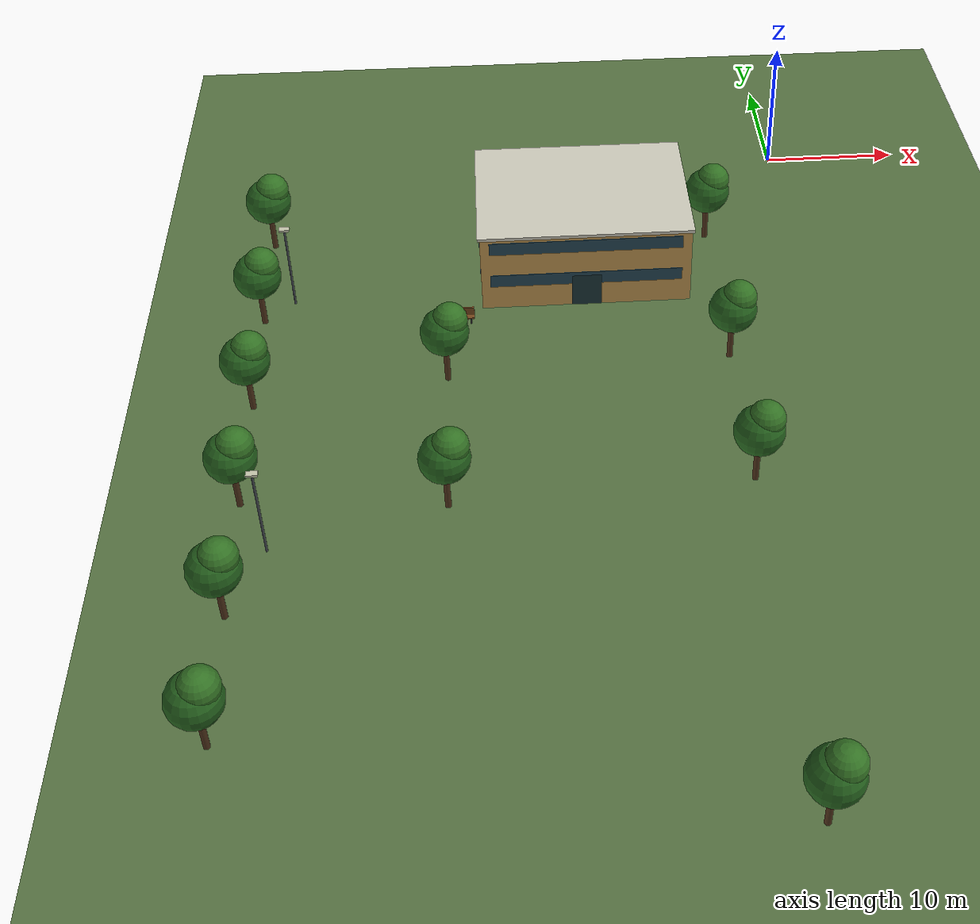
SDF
<sdf version="1.8">
 <world name="ute_city_v1">
  <model name="ground">
   <static>true</static>
   <link name="link">
    <visual name="ground">
     <pose>0 0 -0.1 0 0 0</pose>
     <geometry><box><size>106 154 0.2</size></box></geometry>
     <material>
      <ambient>0.35 0.46 0.27 1</ambient>
      <diffuse>0.35 0.46 0.27 1</diffuse>
      <specular>0.05 0.05 0.05 1</specular>
     </material>
    </visual>
    <collision name="ground_collision">
     <pose>0 0 -0.1 0 0 0</pose>
     <geometry><box><size>106 154 0.2</size></box></geometry>
    </collision>
   </link>
  </model>
  <model name="student_services">
   <static>true</static>
   <pose>-16 -12 0 0 0 0</pose>
   <link name="link">
    <visual name="block">
     <pose>0 0 3 0 0 0</pose>
     <geometry><box><size>15 11 6</size></box></geometry>
     <material>
      <ambient>0.80 0.63 0.34 1</ambient>
      <diffuse>0.80 0.63 0.34 1</diffuse>
      <specular>0.05 0.05 0.05 1</specular>
     </material>
    </visual>
    <collision name="block_collision">
     <pose>0 0 3 0 0 0</pose>
     <geometry><box><size>15 11 6</size></box></geometry>
    </collision>
    <visual name="roof">
     <pose>0 0 6.12 0 0 0</pose>
     <geometry><box><size>15.3 11.3 0.24</size></box></geometry>
     <material>
      <ambient>0.83 0.82 0.76 1</ambient>
      <diffuse>0.83 0.82 0.76 1</diffuse>
      <specular>0.05 0.05 0.05 1</specular>
     </material>
    </visual>
    <collision name="roof_collision">
     <pose>0 0 6.12 0 0 0</pose>
     <geometry><box><size>15.3 11.3 0.24</size></box></geometry>
    </collision>
    <visual name="windows_y_1_-1">
     <pose>0 -5.518 2.4 0 0 0</pose>
     <geometry><box><size>13.7 0.03 1</size></box></geometry>
     <material>
      <ambient>0.16 0.30 0.36 1</ambient>
      <diffuse>0.16 0.30 0.36 1</diffuse>
      <specular>0.05 0.05 0.05 1</specular>
     </material>
    </visual>
    <visual name="windows_x_1_-1">
     <pose>-7.518 0 2.4 0 0 0</pose>
     <geometry><box><size>0.03 9.7 1</size></box></geometry>
     <material>
      <ambient>0.16 0.30 0.36 1</ambient>
      <diffuse>0.16 0.30 0.36 1</diffuse>
      <specular>0.05 0.05 0.05 1</specular>
     </material>
    </visual>
    <visual name="windows_y_1_1">
     <pose>0 5.518 2.4 0 0 0</pose>
     <geometry><box><size>13.7 0.03 1</size></box></geometry>
     <material>
      <ambient>0.16 0.30 0.36 1</ambient>
      <diffuse>0.16 0.30 0.36 1</diffuse>
      <specular>0.05 0.05 0.05 1</specular>
     </material>
    </visual>
    <visual name="windows_x_1_1">
     <pose>7.518 0 2.4 0 0 0</pose>
     <geometry><box><size>0.03 9.7 1</size></box></geometry>
     <material>
      <ambient>0.16 0.30 0.36 1</ambient>
      <diffuse>0.16 0.30 0.36 1</diffuse>
      <specular>0.05 0.05 0.05 1</specular>
     </material>
    </visual>
    <visual name="windows_y_2_-1">
     <pose>0 -5.518 5.2 0 0 0</pose>
     <geometry><box><size>13.7 0.03 1</size></box></geometry>
     <material>
      <ambient>0.16 0.30 0.36 1</ambient>
      <diffuse>0.16 0.30 0.36 1</diffuse>
      <specular>0.05 0.05 0.05 1</specular>
     </material>
    </visual>
    <visual name="windows_x_2_-1">
     <pose>-7.518 0 5.2 0 0 0</pose>
     <geometry><box><size>0.03 9.7 1</size></box></geometry>
     <material>
      <ambient>0.16 0.30 0.36 1</ambient>
      <diffuse>0.16 0.30 0.36 1</diffuse>
      <specular>0.05 0.05 0.05 1</specular>
     </material>
    </visual>
    <visual name="windows_y_2_1">
     <pose>0 5.518 5.2 0 0 0</pose>
     <geometry><box><size>13.7 0.03 1</size></box></geometry>
     <material>
      <ambient>0.16 0.30 0.36 1</ambient>
      <diffuse>0.16 0.30 0.36 1</diffuse>
      <specular>0.05 0.05 0.05 1</specular>
     </material>
    </visual>
    <visual name="windows_x_2_1">
     <pose>7.518 0 5.2 0 0 0</pose>
     <geometry><box><size>0.03 9.7 1</size></box></geometry>
     <material>
      <ambient>0.16 0.30 0.36 1</ambient>
      <diffuse>0.16 0.30 0.36 1</diffuse>
      <specular>0.05 0.05 0.05 1</specular>
     </material>
    </visual>
    <visual name="entry">
     <pose>0 -5.518 1.3 0 0 0</pose>
     <geometry><box><size>2.1 0.04 2.6</size></box></geometry>
     <material>
      <ambient>0.12 0.22 0.24 1</ambient>
      <diffuse>0.12 0.22 0.24 1</diffuse>
      <specular>0.05 0.05 0.05 1</specular>
     </material>
    </visual>
   </link>
  </model>
  <model name="tree_000">
   <static>true</static>
   <pose>-39 -54 0 0 0 0</pose>
   <link name="link">
    <visual name="trunk">
     <pose>0 0 1.6 0 0 0</pose>
     <geometry><cylinder><radius>0.2</radius><length>3.2</length></cylinder></geometry>
     <material>
      <ambient>0.30 0.19 0.10 1</ambient>
      <diffuse>0.30 0.19 0.10 1</diffuse>
      <specular>0.05 0.05 0.05 1</specular>
     </material>
    </visual>
    <collision name="trunk_collision">
     <pose>0 0 1.6 0 0 0</pose>
     <geometry><cylinder><radius>0.2</radius><length>3.2</length></cylinder></geometry>
    </collision>
    <visual name="canopy">
     <pose>0 0 4.2 0 0 0</pose>
     <geometry><sphere><radius>1.65</radius></sphere></geometry>
     <material>
      <ambient>0.15 0.39 0.12 1</ambient>
      <diffuse>0.15 0.39 0.12 1</diffuse>
      <specular>0.05 0.05 0.05 1</specular>
     </material>
    </visual>
    <visual name="crown">
     <pose>0.4 0 5.2 0 0 0</pose>
     <geometry><sphere><radius>1.2</radius></sphere></geometry>
     <material>
      <ambient>0.21 0.46 0.15 1</ambient>
      <diffuse>0.21 0.46 0.15 1</diffuse>
      <specular>0.05 0.05 0.05 1</specular>
     </material>
    </visual>
   </link>
  </model>
  <model name="tree_001">
   <static>true</static>
   <pose>-39 -45 0 0 0 0</pose>
   <link name="link">
    <visual name="trunk">
     <pose>0 0 1.6 0 0 0</pose>
     <geometry><cylinder><radius>0.2</radius><length>3.2</length></cylinder></geometry>
     <material>
      <ambient>0.30 0.19 0.10 1</ambient>
      <diffuse>0.30 0.19 0.10 1</diffuse>
      <specular>0.05 0.05 0.05 1</specular>
     </material>
    </visual>
    <collision name="trunk_collision">
     <pose>0 0 1.6 0 0 0</pose>
     <geometry><cylinder><radius>0.2</radius><length>3.2</length></cylinder></geometry>
    </collision>
    <visual name="canopy">
     <pose>0 0 4.2 0 0 0</pose>
     <geometry><sphere><radius>1.65</radius></sphere></geometry>
     <material>
      <ambient>0.15 0.39 0.12 1</ambient>
      <diffuse>0.15 0.39 0.12 1</diffuse>
      <specular>0.05 0.05 0.05 1</specular>
     </material>
    </visual>
    <visual name="crown">
     <pose>0.4 0 5.2 0 0 0</pose>
     <geometry><sphere><radius>1.2</radius></sphere></geometry>
     <material>
      <ambient>0.21 0.46 0.15 1</ambient>
      <diffuse>0.21 0.46 0.15 1</diffuse>
      <specular>0.05 0.05 0.05 1</specular>
     </material>
    </visual>
   </link>
  </model>
  <model name="tree_002">
   <static>true</static>
   <pose>-39 -36 0 0 0 0</pose>
   <link name="link">
    <visual name="trunk">
     <pose>0 0 1.6 0 0 0</pose>
     <geometry><cylinder><radius>0.2</radius><length>3.2</length></cylinder></geometry>
     <material>
      <ambient>0.30 0.19 0.10 1</ambient>
      <diffuse>0.30 0.19 0.10 1</diffuse>
      <specular>0.05 0.05 0.05 1</specular>
     </material>
    </visual>
    <collision name="trunk_collision">
     <pose>0 0 1.6 0 0 0</pose>
     <geometry><cylinder><radius>0.2</radius><length>3.2</length></cylinder></geometry>
    </collision>
    <visual name="canopy">
     <pose>0 0 4.2 0 0 0</pose>
     <geometry><sphere><radius>1.65</radius></sphere></geometry>
     <material>
      <ambient>0.15 0.39 0.12 1</ambient>
      <diffuse>0.15 0.39 0.12 1</diffuse>
      <specular>0.05 0.05 0.05 1</specular>
     </material>
    </visual>
    <visual name="crown">
     <pose>0.4 0 5.2 0 0 0</pose>
     <geometry><sphere><radius>1.2</radius></sphere></geometry>
     <material>
      <ambient>0.21 0.46 0.15 1</ambient>
      <diffuse>0.21 0.46 0.15 1</diffuse>
      <specular>0.05 0.05 0.05 1</specular>
     </material>
    </visual>
   </link>
  </model>
  <model name="tree_003">
   <static>true</static>
   <pose>-39 -27 0 0 0 0</pose>
   <link name="link">
    <visual name="trunk">
     <pose>0 0 1.6 0 0 0</pose>
     <geometry><cylinder><radius>0.2</radius><length>3.2</length></cylinder></geometry>
     <material>
      <ambient>0.30 0.19 0.10 1</ambient>
      <diffuse>0.30 0.19 0.10 1</diffuse>
      <specular>0.05 0.05 0.05 1</specular>
     </material>
    </visual>
    <collision name="trunk_collision">
     <pose>0 0 1.6 0 0 0</pose>
     <geometry><cylinder><radius>0.2</radius><length>3.2</length></cylinder></geometry>
    </collision>
    <visual name="canopy">
     <pose>0 0 4.2 0 0 0</pose>
     <geometry><sphere><radius>1.65</radius></sphere></geometry>
     <material>
      <ambient>0.15 0.39 0.12 1</ambient>
      <diffuse>0.15 0.39 0.12 1</diffuse>
      <specular>0.05 0.05 0.05 1</specular>
     </material>
    </visual>
    <visual name="crown">
     <pose>0.4 0 5.2 0 0 0</pose>
     <geometry><sphere><radius>1.2</radius></sphere></geometry>
     <material>
      <ambient>0.21 0.46 0.15 1</ambient>
      <diffuse>0.21 0.46 0.15 1</diffuse>
      <specular>0.05 0.05 0.05 1</specular>
     </material>
    </visual>
   </link>
  </model>
  <model name="tree_004">
   <static>true</static>
   <pose>-39 -18 0 0 0 0</pose>
   <link name="link">
    <visual name="trunk">
     <pose>0 0 1.6 0 0 0</pose>
     <geometry><cylinder><radius>0.2</radius><length>3.2</length></cylinder></geometry>
     <material>
      <ambient>0.30 0.19 0.10 1</ambient>
      <diffuse>0.30 0.19 0.10 1</diffuse>
      <specular>0.05 0.05 0.05 1</specular>
     </material>
    </visual>
    <collision name="trunk_collision">
     <pose>0 0 1.6 0 0 0</pose>
     <geometry><cylinder><radius>0.2</radius><length>3.2</length></cylinder></geometry>
    </collision>
    <visual name="canopy">
     <pose>0 0 4.2 0 0 0</pose>
     <geometry><sphere><radius>1.65</radius></sphere></geometry>
     <material>
      <ambient>0.15 0.39 0.12 1</ambient>
      <diffuse>0.15 0.39 0.12 1</diffuse>
      <specular>0.05 0.05 0.05 1</specular>
     </material>
    </visual>
    <visual name="crown">
     <pose>0.4 0 5.2 0 0 0</pose>
     <geometry><sphere><radius>1.2</radius></sphere></geometry>
     <material>
      <ambient>0.21 0.46 0.15 1</ambient>
      <diffuse>0.21 0.46 0.15 1</diffuse>
      <specular>0.05 0.05 0.05 1</specular>
     </material>
    </visual>
   </link>
  </model>
  <model name="tree_005">
   <static>true</static>
   <pose>-39 -9 0 0 0 0</pose>
   <link name="link">
    <visual name="trunk">
     <pose>0 0 1.6 0 0 0</pose>
     <geometry><cylinder><radius>0.2</radius><length>3.2</length></cylinder></geometry>
     <material>
      <ambient>0.30 0.19 0.10 1</ambient>
      <diffuse>0.30 0.19 0.10 1</diffuse>
      <specular>0.05 0.05 0.05 1</specular>
     </material>
    </visual>
    <collision name="trunk_collision">
     <pose>0 0 1.6 0 0 0</pose>
     <geometry><cylinder><radius>0.2</radius><length>3.2</length></cylinder></geometry>
    </collision>
    <visual name="canopy">
     <pose>0 0 4.2 0 0 0</pose>
     <geometry><sphere><radius>1.65</radius></sphere></geometry>
     <material>
      <ambient>0.15 0.39 0.12 1</ambient>
      <diffuse>0.15 0.39 0.12 1</diffuse>
      <specular>0.05 0.05 0.05 1</specular>
     </material>
    </visual>
    <visual name="crown">
     <pose>0.4 0 5.2 0 0 0</pose>
     <geometry><sphere><radius>1.2</radius></sphere></geometry>
     <material>
      <ambient>0.21 0.46 0.15 1</ambient>
      <diffuse>0.21 0.46 0.15 1</diffuse>
      <specular>0.05 0.05 0.05 1</specular>
     </material>
    </visual>
   </link>
  </model>
  <model name="tree_033">
   <static>true</static>
   <pose>-6.5 -61 0 0 0 0</pose>
   <link name="link">
    <visual name="trunk">
     <pose>0 0 1.6 0 0 0</pose>
     <geometry><cylinder><radius>0.2</radius><length>3.2</length></cylinder></geometry>
     <material>
      <ambient>0.30 0.19 0.10 1</ambient>
      <diffuse>0.30 0.19 0.10 1</diffuse>
      <specular>0.05 0.05 0.05 1</specular>
     </material>
    </visual>
    <collision name="trunk_collision">
     <pose>0 0 1.6 0 0 0</pose>
     <geometry><cylinder><radius>0.2</radius><length>3.2</length></cylinder></geometry>
    </collision>
    <visual name="canopy">
     <pose>0 0 4.2 0 0 0</pose>
     <geometry><sphere><radius>1.65</radius></sphere></geometry>
     <material>
      <ambient>0.15 0.39 0.12 1</ambient>
      <diffuse>0.15 0.39 0.12 1</diffuse>
      <specular>0.05 0.05 0.05 1</specular>
     </material>
    </visual>
    <visual name="crown">
     <pose>0.4 0 5.2 0 0 0</pose>
     <geometry><sphere><radius>1.2</radius></sphere></geometry>
     <material>
      <ambient>0.21 0.46 0.15 1</ambient>
      <diffuse>0.21 0.46 0.15 1</diffuse>
      <specular>0.05 0.05 0.05 1</specular>
     </material>
    </visual>
   </link>
  </model>
  <model name="tree_034">
   <static>true</static>
   <pose>-6.5 -36 0 0 0 0</pose>
   <link name="link">
    <visual name="trunk">
     <pose>0 0 1.6 0 0 0</pose>
     <geometry><cylinder><radius>0.2</radius><length>3.2</length></cylinder></geometry>
     <material>
      <ambient>0.30 0.19 0.10 1</ambient>
      <diffuse>0.30 0.19 0.10 1</diffuse>
      <specular>0.05 0.05 0.05 1</specular>
     </material>
    </visual>
    <collision name="trunk_collision">
     <pose>0 0 1.6 0 0 0</pose>
     <geometry><cylinder><radius>0.2</radius><length>3.2</length></cylinder></geometry>
    </collision>
    <visual name="canopy">
     <pose>0 0 4.2 0 0 0</pose>
     <geometry><sphere><radius>1.65</radius></sphere></geometry>
     <material>
      <ambient>0.15 0.39 0.12 1</ambient>
      <diffuse>0.15 0.39 0.12 1</diffuse>
      <specular>0.05 0.05 0.05 1</specular>
     </material>
    </visual>
    <visual name="crown">
     <pose>0.4 0 5.2 0 0 0</pose>
     <geometry><sphere><radius>1.2</radius></sphere></geometry>
     <material>
      <ambient>0.21 0.46 0.15 1</ambient>
      <diffuse>0.21 0.46 0.15 1</diffuse>
      <specular>0.05 0.05 0.05 1</specular>
     </material>
    </visual>
   </link>
  </model>
  <model name="tree_035">
   <static>true</static>
   <pose>-6.5 -24 0 0 0 0</pose>
   <link name="link">
    <visual name="trunk">
     <pose>0 0 1.6 0 0 0</pose>
     <geometry><cylinder><radius>0.2</radius><length>3.2</length></cylinder></geometry>
     <material>
      <ambient>0.30 0.19 0.10 1</ambient>
      <diffuse>0.30 0.19 0.10 1</diffuse>
      <specular>0.05 0.05 0.05 1</specular>
     </material>
    </visual>
    <collision name="trunk_collision">
     <pose>0 0 1.6 0 0 0</pose>
     <geometry><cylinder><radius>0.2</radius><length>3.2</length></cylinder></geometry>
    </collision>
    <visual name="canopy">
     <pose>0 0 4.2 0 0 0</pose>
     <geometry><sphere><radius>1.65</radius></sphere></geometry>
     <material>
      <ambient>0.15 0.39 0.12 1</ambient>
      <diffuse>0.15 0.39 0.12 1</diffuse>
      <specular>0.05 0.05 0.05 1</specular>
     </material>
    </visual>
    <visual name="crown">
     <pose>0.4 0 5.2 0 0 0</pose>
     <geometry><sphere><radius>1.2</radius></sphere></geometry>
     <material>
      <ambient>0.21 0.46 0.15 1</ambient>
      <diffuse>0.21 0.46 0.15 1</diffuse>
      <specular>0.05 0.05 0.05 1</specular>
     </material>
    </visual>
   </link>
  </model>
  <model name="tree_036">
   <static>true</static>
   <pose>-6.5 -10 0 0 0 0</pose>
   <link name="link">
    <visual name="trunk">
     <pose>0 0 1.6 0 0 0</pose>
     <geometry><cylinder><radius>0.2</radius><length>3.2</length></cylinder></geometry>
     <material>
      <ambient>0.30 0.19 0.10 1</ambient>
      <diffuse>0.30 0.19 0.10 1</diffuse>
      <specular>0.05 0.05 0.05 1</specular>
     </material>
    </visual>
    <collision name="trunk_collision">
     <pose>0 0 1.6 0 0 0</pose>
     <geometry><cylinder><radius>0.2</radius><length>3.2</length></cylinder></geometry>
    </collision>
    <visual name="canopy">
     <pose>0 0 4.2 0 0 0</pose>
     <geometry><sphere><radius>1.65</radius></sphere></geometry>
     <material>
      <ambient>0.15 0.39 0.12 1</ambient>
      <diffuse>0.15 0.39 0.12 1</diffuse>
      <specular>0.05 0.05 0.05 1</specular>
     </material>
    </visual>
    <visual name="crown">
     <pose>0.4 0 5.2 0 0 0</pose>
     <geometry><sphere><radius>1.2</radius></sphere></geometry>
     <material>
      <ambient>0.21 0.46 0.15 1</ambient>
      <diffuse>0.21 0.46 0.15 1</diffuse>
      <specular>0.05 0.05 0.05 1</specular>
     </material>
    </visual>
   </link>
  </model>
  <model name="tree_047">
   <static>true</static>
   <pose>-26 -37 0 0 0 0</pose>
   <link name="link">
    <visual name="trunk">
     <pose>0 0 1.6 0 0 0</pose>
     <geometry><cylinder><radius>0.2</radius><length>3.2</length></cylinder></geometry>
     <material>
      <ambient>0.30 0.19 0.10 1</ambient>
      <diffuse>0.30 0.19 0.10 1</diffuse>
      <specular>0.05 0.05 0.05 1</specular>
     </material>
    </visual>
    <collision name="trunk_collision">
     <pose>0 0 1.6 0 0 0</pose>
     <geometry><cylinder><radius>0.2</radius><length>3.2</length></cylinder></geometry>
    </collision>
    <visual name="canopy">
     <pose>0 0 4.2 0 0 0</pose>
     <geometry><sphere><radius>1.65</radius></sphere></geometry>
     <material>
      <ambient>0.15 0.39 0.12 1</ambient>
      <diffuse>0.15 0.39 0.12 1</diffuse>
      <specular>0.05 0.05 0.05 1</specular>
     </material>
    </visual>
    <visual name="crown">
     <pose>0.4 0 5.2 0 0 0</pose>
     <geometry><sphere><radius>1.2</radius></sphere></geometry>
     <material>
      <ambient>0.21 0.46 0.15 1</ambient>
      <diffuse>0.21 0.46 0.15 1</diffuse>
      <specular>0.05 0.05 0.05 1</specular>
     </material>
    </visual>
   </link>
  </model>
  <model name="tree_048">
   <static>true</static>
   <pose>-26 -25 0 0 0 0</pose>
   <link name="link">
    <visual name="trunk">
     <pose>0 0 1.6 0 0 0</pose>
     <geometry><cylinder><radius>0.2</radius><length>3.2</length></cylinder></geometry>
     <material>
      <ambient>0.30 0.19 0.10 1</ambient>
      <diffuse>0.30 0.19 0.10 1</diffuse>
      <specular>0.05 0.05 0.05 1</specular>
     </material>
    </visual>
    <collision name="trunk_collision">
     <pose>0 0 1.6 0 0 0</pose>
     <geometry><cylinder><radius>0.2</radius><length>3.2</length></cylinder></geometry>
    </collision>
    <visual name="canopy">
     <pose>0 0 4.2 0 0 0</pose>
     <geometry><sphere><radius>1.65</radius></sphere></geometry>
     <material>
      <ambient>0.15 0.39 0.12 1</ambient>
      <diffuse>0.15 0.39 0.12 1</diffuse>
      <specular>0.05 0.05 0.05 1</specular>
     </material>
    </visual>
    <visual name="crown">
     <pose>0.4 0 5.2 0 0 0</pose>
     <geometry><sphere><radius>1.2</radius></sphere></geometry>
     <material>
      <ambient>0.21 0.46 0.15 1</ambient>
      <diffuse>0.21 0.46 0.15 1</diffuse>
      <specular>0.05 0.05 0.05 1</specular>
     </material>
    </visual>
   </link>
  </model>
  <model name="lamp_0">
   <static>true</static>
   <pose>-37 -40 0 0 0 0</pose>
   <link name="link">
    <visual name="pole">
     <pose>0 0 3.3 0 0 0</pose>
     <geometry><cylinder><radius>0.08</radius><length>6.6</length></cylinder></geometry>
     <material>
      <ambient>0.25 0.27 0.29 1</ambient>
      <diffuse>0.25 0.27 0.29 1</diffuse>
      <specular>0.05 0.05 0.05 1</specular>
     </material>
    </visual>
    <collision name="pole_collision">
     <pose>0 0 3.3 0 0 0</pose>
     <geometry><cylinder><radius>0.08</radius><length>6.6</length></cylinder></geometry>
    </collision>
    <visual name="fixture">
     <pose>0 0 6.6 0 0 0</pose>
     <geometry><box><size>0.7 0.4 0.15</size></box></geometry>
     <material>
      <ambient>0.8 0.8 0.7 1</ambient>
      <diffuse>0.8 0.8 0.7 1</diffuse>
      <specular>0.05 0.05 0.05 1</specular>
     </material>
    </visual>
    <collision name="fixture_collision">
     <pose>0 0 6.6 0 0 0</pose>
     <geometry><box><size>0.7 0.4 0.15</size></box></geometry>
    </collision>
   </link>
  </model>
  <model name="lamp_1">
   <static>true</static>
   <pose>-37 -16 0 0 0 0</pose>
   <link name="link">
    <visual name="pole">
     <pose>0 0 3.3 0 0 0</pose>
     <geometry><cylinder><radius>0.08</radius><length>6.6</length></cylinder></geometry>
     <material>
      <ambient>0.25 0.27 0.29 1</ambient>
      <diffuse>0.25 0.27 0.29 1</diffuse>
      <specular>0.05 0.05 0.05 1</specular>
     </material>
    </visual>
    <collision name="pole_collision">
     <pose>0 0 3.3 0 0 0</pose>
     <geometry><cylinder><radius>0.08</radius><length>6.6</length></cylinder></geometry>
    </collision>
    <visual name="fixture">
     <pose>0 0 6.6 0 0 0</pose>
     <geometry><box><size>0.7 0.4 0.15</size></box></geometry>
     <material>
      <ambient>0.8 0.8 0.7 1</ambient>
      <diffuse>0.8 0.8 0.7 1</diffuse>
      <specular>0.05 0.05 0.05 1</specular>
     </material>
    </visual>
    <collision name="fixture_collision">
     <pose>0 0 6.6 0 0 0</pose>
     <geometry><box><size>0.7 0.4 0.15</size></box></geometry>
    </collision>
   </link>
  </model>
  <model name="bench_0">
   <static>true</static>
   <pose>-25 -19 0 0 0 0</pose>
   <link name="link">
    <visual name="seat">
     <pose>0 0 0.5 0 0 0</pose>
     <geometry><box><size>1.8 0.5 0.13</size></box></geometry>
     <material>
      <ambient>0.48 0.29 0.12 1</ambient>
      <diffuse>0.48 0.29 0.12 1</diffuse>
      <specular>0.05 0.05 0.05 1</specular>
     </material>
    </visual>
    <collision name="seat_collision">
     <pose>0 0 0.5 0 0 0</pose>
     <geometry><box><size>1.8 0.5 0.13</size></box></geometry>
    </collision>
    <visual name="back">
     <pose>0 0.22 0.85 0 0 0</pose>
     <geometry><box><size>1.8 0.12 0.6</size></box></geometry>
     <material>
      <ambient>0.48 0.29 0.12 1</ambient>
      <diffuse>0.48 0.29 0.12 1</diffuse>
      <specular>0.05 0.05 0.05 1</specular>
     </material>
    </visual>
    <collision name="back_collision">
     <pose>0 0.22 0.85 0 0 0</pose>
     <geometry><box><size>1.8 0.12 0.6</size></box></geometry>
    </collision>
    <visual name="leg_-1">
     <pose>-0.65 0 0.25 0 0 0</pose>
     <geometry><box><size>0.1 0.4 0.5</size></box></geometry>
     <material>
      <ambient>0.2 0.2 0.2 1</ambient>
      <diffuse>0.2 0.2 0.2 1</diffuse>
      <specular>0.05 0.05 0.05 1</specular>
     </material>
    </visual>
    <collision name="leg_-1_collision">
     <pose>-0.65 0 0.25 0 0 0</pose>
     <geometry><box><size>0.1 0.4 0.5</size></box></geometry>
    </collision>
    <visual name="leg_1">
     <pose>0.65 0 0.25 0 0 0</pose>
     <geometry><box><size>0.1 0.4 0.5</size></box></geometry>
     <material>
      <ambient>0.2 0.2 0.2 1</ambient>
      <diffuse>0.2 0.2 0.2 1</diffuse>
      <specular>0.05 0.05 0.05 1</specular>
     </material>
    </visual>
    <collision name="leg_1_collision">
     <pose>0.65 0 0.25 0 0 0</pose>
     <geometry><box><size>0.1 0.4 0.5</size></box></geometry>
    </collision>
   </link>
  </model>
 </world>
</sdf>
